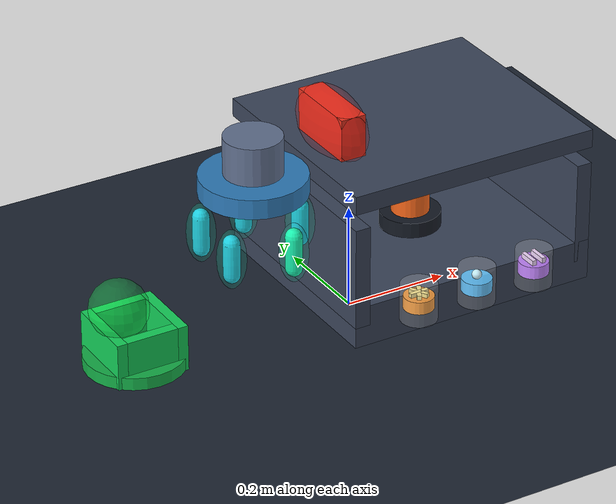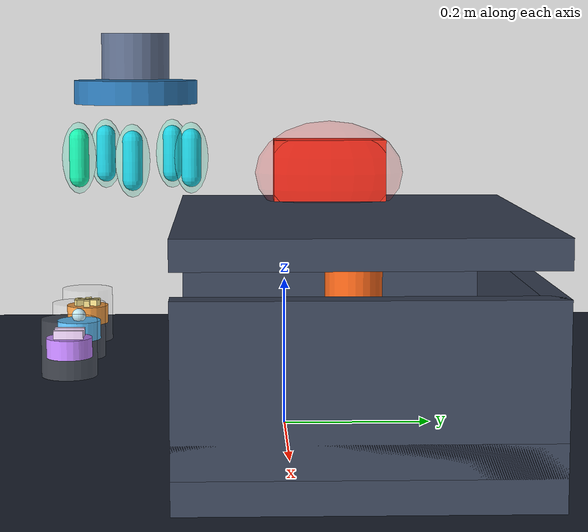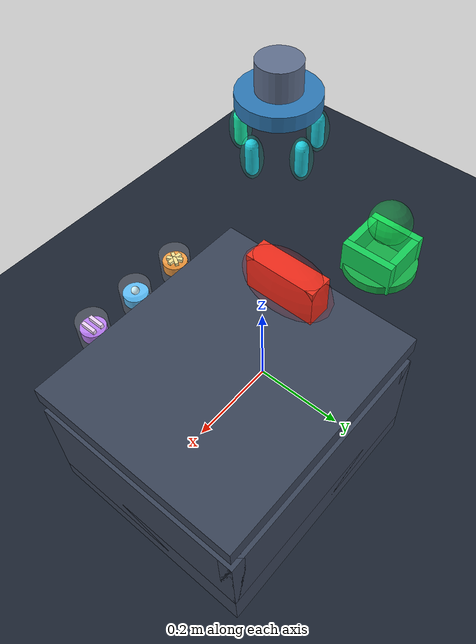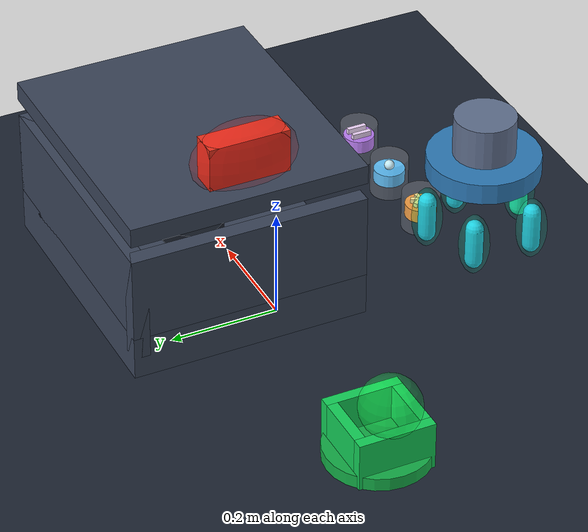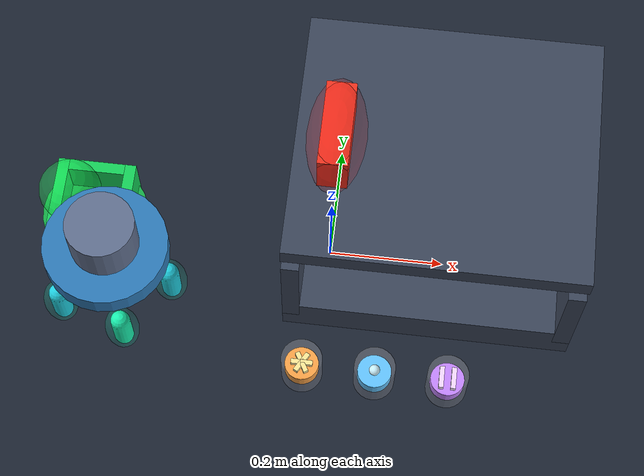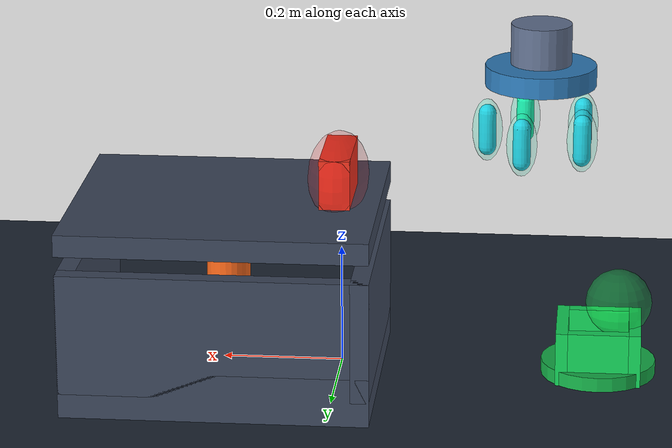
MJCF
<mujoco model="tactile_vault_v2">
  <compiler angle="degree" autolimits="true"/>
  <option timestep="0.004" gravity="0 0 -9.81" integrator="implicitfast" cone="elliptic">
    <flag contact="enable"/>
  </option>
  <size njmax="4000" nconmax="800"/>

  <visual>
    <global offwidth="960" offheight="540"/>
    <headlight ambient="0.38 0.38 0.42" diffuse="0.78 0.78 0.78" specular="0.25 0.25 0.25"/>
    <rgba haze="0.06 0.08 0.12 1"/>
  </visual>

  <default>
    <joint damping="2" armature="0.01"/>
    <geom friction="1.6 0.02 0.002" condim="4" solref="0.008 1" solimp="0.92 0.97 0.002"/>
    <position kp="150" kv="18"/>
    <default class="digit">
      <joint type="slide" range="0 0.055" damping="4"/>
      <geom type="capsule" fromto="0 0 -0.030 0 0 0.030" size="0.015"
            rgba="0.15 0.78 0.92 1" friction="3.5 0.04 0.003"/>
      <site type="ellipsoid" size="0.026 0.026 0.055" rgba="0.05 1 0.75 0.18"/>
    </default>
    <default class="key">
      <joint type="slide" axis="0 0 -1" range="0 0.022" stiffness="180" damping="3"/>
      <geom type="cylinder" size="0.028 0.012" mass="0.025" friction="2.2 0.02 0.002"/>
      <site type="cylinder" size="0.034 0.035" rgba="1 1 1 0.12"/>
    </default>
  </default>

  <asset>
    <texture name="grid" type="2d" builtin="checker" width="256" height="256"
             rgb1="0.08 0.10 0.15" rgb2="0.14 0.18 0.24"/>
    <material name="floor_mat" texture="grid" texrepeat="10 10" reflectance="0.12"/>
    <material name="vault_mat" rgba="0.23 0.27 0.35 1" metallic="0.55" roughness="0.42"/>
    <material name="vial_mat" rgba="0.96 0.40 0.10 1"/>
  </asset>

  <worldbody>
    <geom name="floor" type="plane" size="2 2 0.1" material="floor_mat"/>
    <light pos="0 -1.5 2.5" dir="0 0.5 -1"/>
    <light pos="-1 1 1.8" dir="0.5 -0.4 -1" diffuse="0.35 0.55 0.80"/>

    <!-- The lockbox is a real obstacle: the lid covers the vial until the
         measured tactile code releases lid_lock and the hand pushes it. -->
    <body name="vault" pos="0.18 0.08 0.04">
      <geom name="vault_base" type="box" size="0.25 0.22 0.04" material="vault_mat"/>
      <geom name="vault_left_wall" type="box" pos="-0.235 0 0.10" size="0.015 0.22 0.10" material="vault_mat"/>
      <geom name="vault_right_wall" type="box" pos="0.235 0 0.10" size="0.015 0.22 0.10" material="vault_mat"/>
      <geom name="vault_back_wall" type="box" pos="0 0.205 0.10" size="0.25 0.015 0.10" material="vault_mat"/>
      <geom name="well_floor" type="cylinder" pos="0 0 0.055" size="0.058 0.015" rgba="0.08 0.10 0.14 1"/>
      <site name="vault_center" pos="0 0 0.14" size="0.008" rgba="0 0 0 0"/>
    </body>

    <!-- Three different raised patterns can be located by touch. The code is
         triangle -> bars -> dot (key 1 -> key 3 -> key 2). -->
    <body name="key_1" pos="-0.02 -0.27 0.15" childclass="key">
      <joint name="key_1_slide"/><geom name="key_1_geom" rgba="0.98 0.56 0.12 1"/>
      <geom type="box" pos="0 0 0.015" size="0.018 0.004 0.005" euler="0 0 0" mass="0.001" rgba="1 0.9 0.5 1"/>
      <geom type="box" pos="0 0 0.015" size="0.018 0.004 0.005" euler="0 0 60" mass="0.001" rgba="1 0.9 0.5 1"/>
      <geom type="box" pos="0 0 0.015" size="0.018 0.004 0.005" euler="0 0 -60" mass="0.001" rgba="1 0.9 0.5 1"/>
      <site name="key_1_touch_site"/>
    </body>
    <body name="key_2" pos="0.10 -0.27 0.15" childclass="key">
      <joint name="key_2_slide"/><geom name="key_2_geom" rgba="0.25 0.72 1 1"/>
      <geom type="sphere" pos="0 0 0.018" size="0.009" mass="0.001" rgba="0.75 0.94 1 1"/>
      <site name="key_2_touch_site"/>
    </body>
    <body name="key_3" pos="0.22 -0.27 0.15" childclass="key">
      <joint name="key_3_slide"/><geom name="key_3_geom" rgba="0.72 0.42 1 1"/>
      <geom type="box" pos="-0.010 0 0.017" size="0.004 0.018 0.005" mass="0.001" rgba="0.95 0.82 1 1"/>
      <geom type="box" pos="0.010 0 0.017" size="0.004 0.018 0.005" mass="0.001" rgba="0.95 0.82 1 1"/>
      <site name="key_3_touch_site"/>
    </body>

    <body name="lid" pos="0.18 0.08 0.290">
      <joint name="lid_slide" type="slide" axis="1 0 0" range="0 0.42" damping="5" frictionloss="0.4"/>
      <geom name="lid_panel" type="box" size="0.25 0.22 0.018" material="vault_mat" mass="0.7"/>
      <geom name="lid_handle" type="box" pos="-0.18 -0.02 0.055" size="0.025 0.075 0.045"
            rgba="0.94 0.20 0.12 1" friction="3 0.03 0.002"/>
      <site name="lid_handle_touch_site" type="ellipsoid" pos="-0.18 -0.02 0.055" size="0.05 0.10 0.07" rgba="1 0.1 0.1 0.15"/>
    </body>

    <body name="medicine_vial" pos="0.18 0.08 0.180">
      <freejoint name="vial_free"/>
      <geom name="vial_body" type="cylinder" size="0.036 0.070" material="vial_mat" mass="0.10"
            friction="4.0 0.05 0.005"/>
      <geom name="vial_cap" type="cylinder" pos="0 0 0.078" size="0.039 0.010"
            rgba="0.92 0.96 1 1" mass="0.02" friction="4.0 0.05 0.005"/>
      <site name="vial_site" size="0.010" rgba="1 1 1 0.35"/>
    </body>

    <site name="delivery_goal" pos="-0.462 0.015 0.122" size="0.055" rgba="0.10 1 0.35 0.35"/>
    <geom name="delivery_pad" type="cylinder" pos="-0.43 0.02 0.012" size="0.095 0.012" rgba="0.08 0.68 0.28 1"/>
    <geom name="tray_left" type="box" pos="-0.49 0.02 0.045" size="0.010 0.070 0.045" rgba="0.08 0.82 0.35 1"/>
    <geom name="tray_right" type="box" pos="-0.37 0.02 0.045" size="0.010 0.070 0.045" rgba="0.08 0.82 0.35 1"/>
    <geom name="tray_front" type="box" pos="-0.43 -0.04 0.045" size="0.050 0.010 0.045" rgba="0.08 0.82 0.35 1"/>
    <geom name="tray_back" type="box" pos="-0.43 0.08 0.045" size="0.050 0.010 0.045" rgba="0.08 0.82 0.35 1"/>

    <!-- A compact five-digit radial hand. Each digit has an independent
         prismatic close joint, tactile pad, and contact-only adhesion channel. -->
    <body name="gantry" pos="-0.32 -0.22 0.50">
      <inertial pos="0 0 0" mass="0.25" diaginertia="0.002 0.002 0.002"/>
      <joint name="hand_x" type="slide" axis="1 0 0" range="-0.35 0.85" damping="14"/>
      <joint name="hand_y" type="slide" axis="0 1 0" range="-0.35 0.65" damping="14"/>
      <joint name="hand_z" type="slide" axis="0 0 1" range="-0.42 0.20" damping="14"/>
      <body name="wrist">
        <joint name="wrist_yaw" type="hinge" axis="0 0 1" range="-180 180" damping="5"/>
        <geom type="cylinder" size="0.052 0.035" rgba="0.38 0.44 0.56 1" contype="0" conaffinity="0"/>
        <body name="palm" pos="0 0 -0.055">
          <geom name="palm_geom" type="cylinder" size="0.095 0.018" rgba="0.18 0.48 0.72 1" contype="0" conaffinity="0"/>
          <site name="palm_site" size="0.010"/>

          <body name="index_pad" pos="0.090 0 -0.100" childclass="digit">
            <joint name="index_close" axis="-1 0 0"/><geom name="index_pad_geom"/><site name="index_touch_site"/>
          </body>
          <body name="middle_pad" pos="0.028 0.086 -0.100" childclass="digit">
            <joint name="middle_close" axis="-0.309 -0.951 0"/><geom name="middle_pad_geom"/><site name="middle_touch_site"/>
          </body>
          <body name="ring_pad" pos="-0.073 0.053 -0.100" childclass="digit">
            <joint name="ring_close" axis="0.809 -0.588 0"/><geom name="ring_pad_geom"/><site name="ring_touch_site"/>
          </body>
          <body name="little_pad" pos="-0.073 -0.053 -0.100" childclass="digit">
            <joint name="little_close" axis="0.809 0.588 0"/><geom name="little_pad_geom"/><site name="little_touch_site"/>
          </body>
          <body name="thumb_pad" pos="0.028 -0.086 -0.100" childclass="digit">
            <joint name="thumb_close" axis="-0.309 0.951 0"/><geom name="thumb_pad_geom" rgba="0.12 0.94 0.68 1"/><site name="thumb_touch_site"/>
          </body>
        </body>
      </body>
    </body>

    <camera name="judge_camera" pos="1.15 -1.35 1.15" xyaxes="0.76 0.65 0 -0.37 0.43 0.82"/>
    <camera name="detail_camera" pos="0.55 -0.85 0.72" xyaxes="0.84 0.54 0 -0.27 0.42 0.87"/>
  </worldbody>

  <actuator>
    <position name="hand_x_servo" joint="hand_x" kp="700" kv="55"/>
    <position name="hand_y_servo" joint="hand_y" kp="700" kv="55"/>
    <position name="hand_z_servo" joint="hand_z" kp="700" kv="55"/>
    <position name="wrist_yaw_servo" joint="wrist_yaw" kp="120" kv="14"/>
    <position name="index_servo" joint="index_close" kp="260" kv="22"/>
    <position name="middle_servo" joint="middle_close" kp="260" kv="22"/>
    <position name="ring_servo" joint="ring_close" kp="260" kv="22"/>
    <position name="little_servo" joint="little_close" kp="260" kv="22"/>
    <position name="thumb_servo" joint="thumb_close" kp="260" kv="22"/>
    <adhesion name="index_adhesion" body="index_pad" gain="18" ctrlrange="0 1"/>
    <adhesion name="middle_adhesion" body="middle_pad" gain="18" ctrlrange="0 1"/>
    <adhesion name="ring_adhesion" body="ring_pad" gain="18" ctrlrange="0 1"/>
    <adhesion name="little_adhesion" body="little_pad" gain="18" ctrlrange="0 1"/>
    <adhesion name="thumb_adhesion" body="thumb_pad" gain="18" ctrlrange="0 1"/>
  </actuator>

  <!-- A solver lock is appropriate here: it models the physical lock, not the
       grasp. The controller may release it only after the measured key code. -->
  <equality>
    <weld name="lid_lock" body1="lid" body2="vault" active="true"
          solref="0.004 1" solimp="0.98 0.995 0.001"/>
  </equality>

  <sensor>
    <framepos name="palm_position" objtype="site" objname="palm_site"/>
    <framepos name="vial_position" objtype="site" objname="vial_site"/>
    <framepos name="goal_position" objtype="site" objname="delivery_goal"/>
    <jointpos name="hand_x_position" joint="hand_x"/><jointpos name="hand_y_position" joint="hand_y"/><jointpos name="hand_z_position" joint="hand_z"/>
    <jointpos name="key_1_depth" joint="key_1_slide"/><jointpos name="key_2_depth" joint="key_2_slide"/><jointpos name="key_3_depth" joint="key_3_slide"/>
    <jointpos name="lid_position" joint="lid_slide"/>
    <touch name="key_1_touch" site="key_1_touch_site"/><touch name="key_2_touch" site="key_2_touch_site"/><touch name="key_3_touch" site="key_3_touch_site"/>
    <touch name="lid_handle_touch" site="lid_handle_touch_site"/>
    <touch name="index_touch" site="index_touch_site"/><touch name="middle_touch" site="middle_touch_site"/>
    <touch name="ring_touch" site="ring_touch_site"/><touch name="little_touch" site="little_touch_site"/><touch name="thumb_touch" site="thumb_touch_site"/>
  </sensor>
</mujoco>
